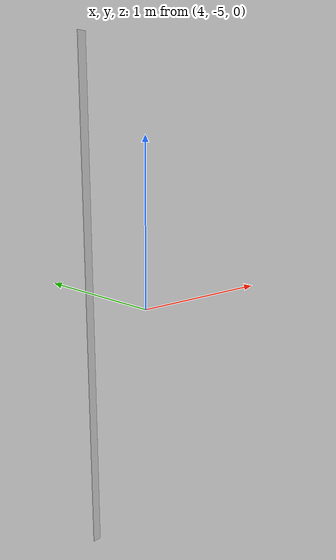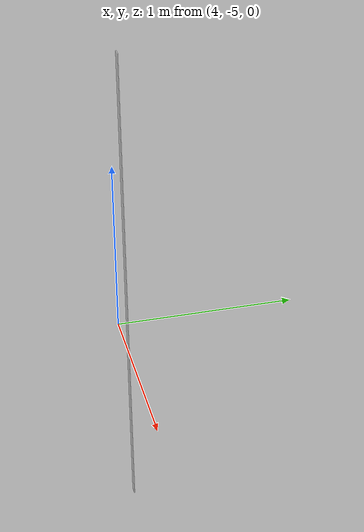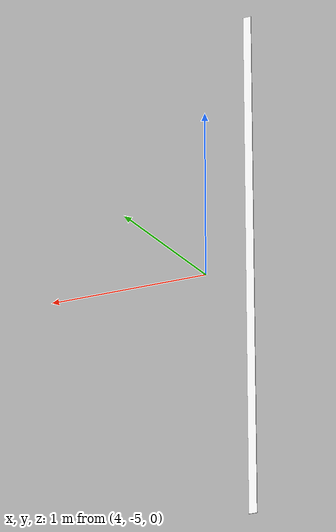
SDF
<?xml version="1.0" ?>
<sdf version="1.5">
  <model name="reflective_tape_5cm">
    <static>1</static>
    <pose frame="">3.6685 -4.88865 0.0 0 0 0</pose> <!-- Placed at 1.2m height -->

    <link name="link">
      <inertial>
        <mass>0.01</mass>
        <inertia>
          <ixx>1e-6</ixx>
          <ixy>0</ixy>
          <ixz>0</ixz>
          <iyy>1e-6</iyy>
          <iyz>0</iyz>
          <izz>1e-6</izz>
        </inertia>
      </inertial>

      <collision name="collision">
        <laser_retro>1000.0</laser_retro>
        <geometry>
          <box>
            <size>0.05 0.005 3</size>
          </box>
        </geometry>
        <max_contacts>10</max_contacts>
        <surface>
          <contact><ode/></contact>
          <bounce/>
          <friction>
            <torsional><ode/></torsional>
            <ode/>
          </friction>
        </surface>
      </collision>

      <visual name="visual">
        <geometry>
          <box>
            <size>0.05 0.005 3</size>
          </box>
        </geometry>
        <material>
          <script>
            <name>Gazebo/WhiteGlow</name> <!-- High visibility material -->
            <uri>file://media/materials/scripts/gazebo.material</uri>
          </script>
          <ambient>1 1 1 1</ambient>
          <diffuse>1 1 1 1</diffuse>
          <specular>1 1 1 1</specular>
          <emissive>1 1 1 1</emissive>
        </material>
        <laser_retro>1000.0</laser_retro>
      </visual>

      <self_collide>0</self_collide>
      <kinematic>0</kinematic>
      <gravity>1</gravity>
    </link>
  </model>
</sdf>
